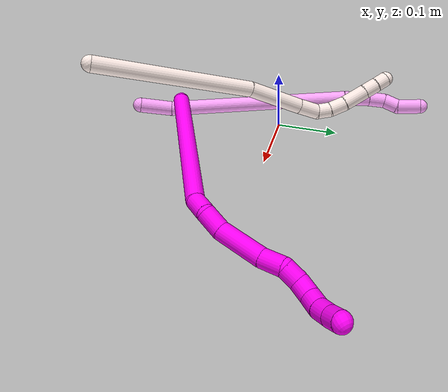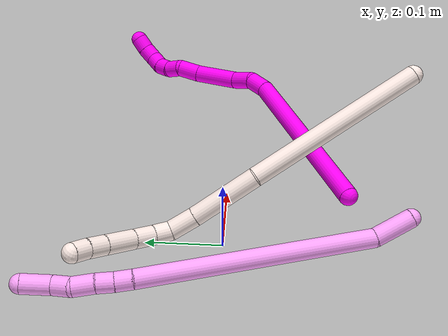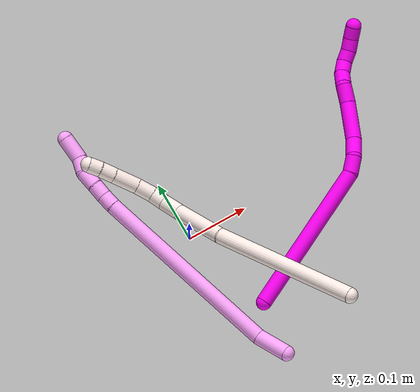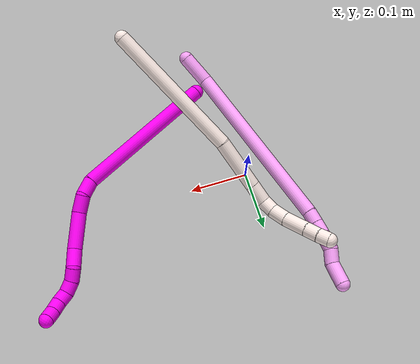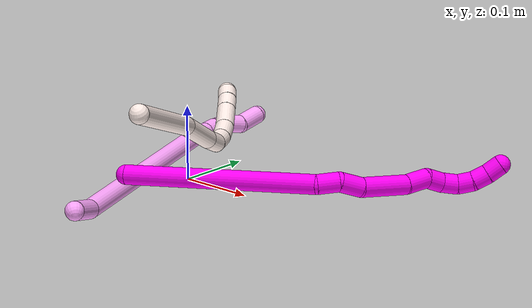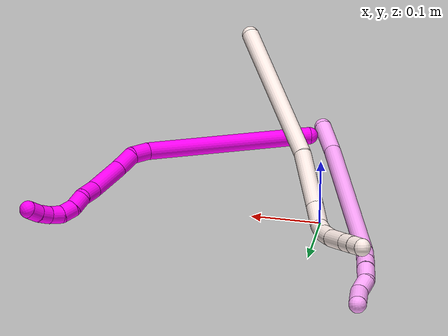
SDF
<sdf version="1.7">
 <world name="default">
  <model name="4">
   <static>0</static>
   <link name="4">
    <collision name="collision-cylinder-e_1_1_4">
     <pose>0.004407 0.020574 -0.016943 -2.25972 0.163883 -0.344597</pose>
     <geometry><cylinder><radius>0.0125</radius><length>0.054029</length></cylinder></geometry>
     <surface>
      <friction><ode><mu>1.16</mu><mu2>1.16</mu2><slip1>0</slip1><slip2>0</slip2></ode></friction>
      <contact><ode><kp>1e+06</kp><kd>1</kd><max_vel>0</max_vel><min_depth>0.001</min_depth></ode></contact>
     </surface>
    </collision>
    <visual name="visual-cylinder-e_1_1_4">
     <pose>0.004407 0.020574 -0.016943 -2.25972 0.163883 -0.344597</pose>
     <geometry><cylinder><radius>0.0125</radius><length>0.054029</length></cylinder></geometry>
     <material><ambient>1 0.65098 0.996078 1</ambient></material>
    </visual>
    <collision name="collision-cylinder-e_2_4_5">
     <pose>-0.013799 0.142846 -0.147864 -2.41306 -0.146975 0.38148</pose>
     <geometry><cylinder><radius>0.0125</radius><length>0.308836</length></cylinder></geometry>
     <surface>
      <friction><ode><mu>1.16</mu><mu2>1.16</mu2><slip1>0</slip1><slip2>0</slip2></ode></friction>
      <contact><ode><kp>1e+06</kp><kd>1</kd><max_vel>0</max_vel><min_depth>0.001</min_depth></ode></contact>
     </surface>
    </collision>
    <visual name="visual-cylinder-e_2_4_5">
     <pose>-0.013799 0.142846 -0.147864 -2.41306 -0.146975 0.38148</pose>
     <geometry><cylinder><radius>0.0125</radius><length>0.308836</length></cylinder></geometry>
     <material><ambient>1 0.65098 0.996078 1</ambient></material>
    </visual>
    <collision name="collision-cylinder-e_3_5_6">
     <pose>-0.038346 0.252634 -0.269013 -2.29621 -0.176949 0.389425</pose>
     <geometry><cylinder><radius>0.0125</radius><length>0.021965</length></cylinder></geometry>
     <surface>
      <friction><ode><mu>1.16</mu><mu2>1.16</mu2><slip1>0</slip1><slip2>0</slip2></ode></friction>
      <contact><ode><kp>1e+06</kp><kd>1</kd><max_vel>0</max_vel><min_depth>0.001</min_depth></ode></contact>
     </surface>
    </collision>
    <visual name="visual-cylinder-e_3_5_6">
     <pose>-0.038346 0.252634 -0.269013 -2.29621 -0.176949 0.389425</pose>
     <geometry><cylinder><radius>0.0125</radius><length>0.021965</length></cylinder></geometry>
     <material><ambient>1 0.65098 0.996078 1</ambient></material>
    </visual>
    <collision name="collision-cylinder-e_4_6_7">
     <pose>-0.043007 0.268638 -0.283631 -2.32562 -0.245938 0.557009</pose>
     <geometry><cylinder><radius>0.0125</radius><length>0.022406</length></cylinder></geometry>
     <surface>
      <friction><ode><mu>1.16</mu><mu2>1.16</mu2><slip1>0</slip1><slip2>0</slip2></ode></friction>
      <contact><ode><kp>1e+06</kp><kd>1</kd><max_vel>0</max_vel><min_depth>0.001</min_depth></ode></contact>
     </surface>
    </collision>
    <visual name="visual-cylinder-e_4_6_7">
     <pose>-0.043007 0.268638 -0.283631 -2.32562 -0.245938 0.557009</pose>
     <geometry><cylinder><radius>0.0125</radius><length>0.022406</length></cylinder></geometry>
     <material><ambient>1 0.65098 0.996078 1</ambient></material>
    </visual>
    <collision name="collision-cylinder-e_5_7_8">
     <pose>-0.04819 0.287509 -0.299611 -2.23262 -0.174979 0.355254</pose>
     <geometry><cylinder><radius>0.0125</radius><length>0.028209</length></cylinder></geometry>
     <surface>
      <friction><ode><mu>1.16</mu><mu2>1.16</mu2><slip1>0</slip1><slip2>0</slip2></ode></friction>
      <contact><ode><kp>1e+06</kp><kd>1</kd><max_vel>0</max_vel><min_depth>0.001</min_depth></ode></contact>
     </surface>
    </collision>
    <visual name="visual-cylinder-e_5_7_8">
     <pose>-0.04819 0.287509 -0.299611 -2.23262 -0.174979 0.355254</pose>
     <geometry><cylinder><radius>0.0125</radius><length>0.028209</length></cylinder></geometry>
     <material><ambient>1 0.65098 0.996078 1</ambient></material>
    </visual>
    <collision name="collision-cylinder-e_6_8_9">
     <pose>-0.055427 0.309787 -0.311578 -1.86506 -0.384118 0.512708</pose>
     <geometry><cylinder><radius>0.0125</radius><length>0.025519</length></cylinder></geometry>
     <surface>
      <friction><ode><mu>1.16</mu><mu2>1.16</mu2><slip1>0</slip1><slip2>0</slip2></ode></friction>
      <contact><ode><kp>1e+06</kp><kd>1</kd><max_vel>0</max_vel><min_depth>0.001</min_depth></ode></contact>
     </surface>
    </collision>
    <visual name="visual-cylinder-e_6_8_9">
     <pose>-0.055427 0.309787 -0.311578 -1.86506 -0.384118 0.512708</pose>
     <geometry><cylinder><radius>0.0125</radius><length>0.025519</length></cylinder></geometry>
     <material><ambient>1 0.65098 0.996078 1</ambient></material>
    </visual>
    <collision name="collision-cylinder-e_7_9_2">
     <pose>-0.067124 0.334154 -0.327775 -2.34537 -0.362142 0.821136</pose>
     <geometry><cylinder><radius>0.0125</radius><length>0.039037</length></cylinder></geometry>
     <surface>
      <friction><ode><mu>1.16</mu><mu2>1.16</mu2><slip1>0</slip1><slip2>0</slip2></ode></friction>
      <contact><ode><kp>1e+06</kp><kd>1</kd><max_vel>0</max_vel><min_depth>0.001</min_depth></ode></contact>
     </surface>
    </collision>
    <visual name="visual-cylinder-e_7_9_2">
     <pose>-0.067124 0.334154 -0.327775 -2.34537 -0.362142 0.821136</pose>
     <geometry><cylinder><radius>0.0125</radius><length>0.039037</length></cylinder></geometry>
     <material><ambient>1 0.65098 0.996078 1</ambient></material>
    </visual>
    <collision name="collision-sphere-2">
     <pose>-0.074038 0.347199 -0.340541 0 -0 0</pose>
     <geometry><sphere><radius>0.0125</radius></sphere></geometry>
     <surface>
      <friction><ode><mu>1.16</mu><mu2>1.16</mu2><slip1>0</slip1><slip2>0</slip2></ode></friction>
      <contact><ode><kp>1e+06</kp><kd>1</kd><max_vel>0</max_vel><min_depth>0.001</min_depth></ode></contact>
     </surface>
    </collision>
    <visual name="visual-sphere-2">
     <pose>-0.074038 0.347199 -0.340541 0 -0 0</pose>
     <geometry><sphere><radius>0.0125</radius></sphere></geometry>
     <material><ambient>1 0.65098 0.996078 1</ambient></material>
    </visual>
    <collision name="collision-sphere-9">
     <pose>-0.060209 0.321109 -0.315009 0 -0 0</pose>
     <geometry><sphere><radius>0.0125</radius></sphere></geometry>
     <surface>
      <friction><ode><mu>1.16</mu><mu2>1.16</mu2><slip1>0</slip1><slip2>0</slip2></ode></friction>
      <contact><ode><kp>1e+06</kp><kd>1</kd><max_vel>0</max_vel><min_depth>0.001</min_depth></ode></contact>
     </surface>
    </collision>
    <visual name="visual-sphere-9">
     <pose>-0.060209 0.321109 -0.315009 0 -0 0</pose>
     <geometry><sphere><radius>0.0125</radius></sphere></geometry>
     <material><ambient>1 0.65098 0.996078 1</ambient></material>
    </visual>
    <collision name="collision-sphere-4">
     <pose>0.008815 0.041148 -0.033886 0 -0 0</pose>
     <geometry><sphere><radius>0.0125</radius></sphere></geometry>
     <surface>
      <friction><ode><mu>1.16</mu><mu2>1.16</mu2><slip1>0</slip1><slip2>0</slip2></ode></friction>
      <contact><ode><kp>1e+06</kp><kd>1</kd><max_vel>0</max_vel><min_depth>0.001</min_depth></ode></contact>
     </surface>
    </collision>
    <visual name="visual-sphere-4">
     <pose>0.008815 0.041148 -0.033886 0 -0 0</pose>
     <geometry><sphere><radius>0.0125</radius></sphere></geometry>
     <material><ambient>1 0.65098 0.996078 1</ambient></material>
    </visual>
    <collision name="collision-sphere-1">
     <geometry><sphere><radius>0.0125</radius></sphere></geometry>
     <surface>
      <friction><ode><mu>1.16</mu><mu2>1.16</mu2><slip1>0</slip1><slip2>0</slip2></ode></friction>
      <contact><ode><kp>1e+06</kp><kd>1</kd><max_vel>0</max_vel><min_depth>0.001</min_depth></ode></contact>
     </surface>
    </collision>
    <visual name="visual-sphere-1">
     <geometry><sphere><radius>0.0125</radius></sphere></geometry>
     <material><ambient>1 0.65098 0.996078 1</ambient></material>
    </visual>
    <collision name="collision-sphere-8">
     <pose>-0.050645 0.298466 -0.308147 0 -0 0</pose>
     <geometry><sphere><radius>0.0125</radius></sphere></geometry>
     <surface>
      <friction><ode><mu>1.16</mu><mu2>1.16</mu2><slip1>0</slip1><slip2>0</slip2></ode></friction>
      <contact><ode><kp>1e+06</kp><kd>1</kd><max_vel>0</max_vel><min_depth>0.001</min_depth></ode></contact>
     </surface>
    </collision>
    <visual name="visual-sphere-8">
     <pose>-0.050645 0.298466 -0.308147 0 -0 0</pose>
     <geometry><sphere><radius>0.0125</radius></sphere></geometry>
     <material><ambient>1 0.65098 0.996078 1</ambient></material>
    </visual>
    <collision name="collision-sphere-5">
     <pose>-0.036413 0.244545 -0.261841 0 -0 0</pose>
     <geometry><sphere><radius>0.0125</radius></sphere></geometry>
     <surface>
      <friction><ode><mu>1.16</mu><mu2>1.16</mu2><slip1>0</slip1><slip2>0</slip2></ode></friction>
      <contact><ode><kp>1e+06</kp><kd>1</kd><max_vel>0</max_vel><min_depth>0.001</min_depth></ode></contact>
     </surface>
    </collision>
    <visual name="visual-sphere-5">
     <pose>-0.036413 0.244545 -0.261841 0 -0 0</pose>
     <geometry><sphere><radius>0.0125</radius></sphere></geometry>
     <material><ambient>1 0.65098 0.996078 1</ambient></material>
    </visual>
    <collision name="collision-sphere-6">
     <pose>-0.04028 0.260724 -0.276186 0 -0 0</pose>
     <geometry><sphere><radius>0.0125</radius></sphere></geometry>
     <surface>
      <friction><ode><mu>1.16</mu><mu2>1.16</mu2><slip1>0</slip1><slip2>0</slip2></ode></friction>
      <contact><ode><kp>1e+06</kp><kd>1</kd><max_vel>0</max_vel><min_depth>0.001</min_depth></ode></contact>
     </surface>
    </collision>
    <visual name="visual-sphere-6">
     <pose>-0.04028 0.260724 -0.276186 0 -0 0</pose>
     <geometry><sphere><radius>0.0125</radius></sphere></geometry>
     <material><ambient>1 0.65098 0.996078 1</ambient></material>
    </visual>
    <collision name="collision-sphere-7">
     <pose>-0.045735 0.276553 -0.291076 0 -0 0</pose>
     <geometry><sphere><radius>0.0125</radius></sphere></geometry>
     <surface>
      <friction><ode><mu>1.16</mu><mu2>1.16</mu2><slip1>0</slip1><slip2>0</slip2></ode></friction>
      <contact><ode><kp>1e+06</kp><kd>1</kd><max_vel>0</max_vel><min_depth>0.001</min_depth></ode></contact>
     </surface>
    </collision>
    <visual name="visual-sphere-7">
     <pose>-0.045735 0.276553 -0.291076 0 -0 0</pose>
     <geometry><sphere><radius>0.0125</radius></sphere></geometry>
     <material><ambient>1 0.65098 0.996078 1</ambient></material>
    </visual>
    <inertial>
     <pose>-0.022447 0.171712 -0.176086 0 -0 0</pose>
     <mass>0.5</mass>
     <inertia>
      <ixx>0.003197</ixx>
      <ixy>0</ixy>
      <ixz>0</ixz>
      <iyy>-0.000694</iyy>
      <iyz>0</iyz>
      <izz>-0.001311</izz>
     </inertia>
    </inertial>
   </link>
   <pose>0.036449 -0.23856 0.027508 -2.21011 0.684445 -2.66268</pose>
  </model>
  <model name="10">
   <static>0</static>
   <link name="10">
    <collision name="collision-cylinder-e_1_1_4">
     <pose>0.003686 0.040278 0.115553 -0.3354 0.030109 -0.005098</pose>
     <geometry><cylinder><radius>0.0125</radius><length>0.244854</length></cylinder></geometry>
     <surface>
      <friction><ode><mu>1.16</mu><mu2>1.16</mu2><slip1>0</slip1><slip2>0</slip2></ode></friction>
      <contact><ode><kp>1e+06</kp><kd>1</kd><max_vel>0</max_vel><min_depth>0.001</min_depth></ode></contact>
     </surface>
    </collision>
    <visual name="visual-cylinder-e_1_1_4">
     <pose>0.003686 0.040278 0.115553 -0.3354 0.030109 -0.005098</pose>
     <geometry><cylinder><radius>0.0125</radius><length>0.244854</length></cylinder></geometry>
     <material><ambient>1 0 0.964706 1</ambient></material>
    </visual>
    <collision name="collision-cylinder-e_2_4_5">
     <pose>0.011437 0.08123 0.244457 -0.050417 0.295252 -0.007499</pose>
     <geometry><cylinder><radius>0.0125</radius><length>0.027945</length></cylinder></geometry>
     <surface>
      <friction><ode><mu>1.16</mu><mu2>1.16</mu2><slip1>0</slip1><slip2>0</slip2></ode></friction>
      <contact><ode><kp>1e+06</kp><kd>1</kd><max_vel>0</max_vel><min_depth>0.001</min_depth></ode></contact>
     </surface>
    </collision>
    <visual name="visual-cylinder-e_2_4_5">
     <pose>0.011437 0.08123 0.244457 -0.050417 0.295252 -0.007499</pose>
     <geometry><cylinder><radius>0.0125</radius><length>0.027945</length></cylinder></geometry>
     <material><ambient>1 0 0.964706 1</ambient></material>
    </visual>
    <collision name="collision-cylinder-e_3_5_6">
     <pose>0.016103 0.076939 0.272021 0.336057 0.039839 0.006759</pose>
     <geometry><cylinder><radius>0.0125</radius><length>0.030135</length></cylinder></geometry>
     <surface>
      <friction><ode><mu>1.16</mu><mu2>1.16</mu2><slip1>0</slip1><slip2>0</slip2></ode></friction>
      <contact><ode><kp>1e+06</kp><kd>1</kd><max_vel>0</max_vel><min_depth>0.001</min_depth></ode></contact>
     </surface>
    </collision>
    <visual name="visual-cylinder-e_3_5_6">
     <pose>0.016103 0.076939 0.272021 0.336057 0.039839 0.006759</pose>
     <geometry><cylinder><radius>0.0125</radius><length>0.030135</length></cylinder></geometry>
     <material><ambient>1 0 0.964706 1</ambient></material>
    </visual>
    <collision name="collision-cylinder-e_4_6_7">
     <pose>0.026892 0.061834 0.314176 0.348129 0.330222 0.058584</pose>
     <geometry><cylinder><radius>0.0125</radius><length>0.062845</length></cylinder></geometry>
     <surface>
      <friction><ode><mu>1.16</mu><mu2>1.16</mu2><slip1>0</slip1><slip2>0</slip2></ode></friction>
      <contact><ode><kp>1e+06</kp><kd>1</kd><max_vel>0</max_vel><min_depth>0.001</min_depth></ode></contact>
     </surface>
    </collision>
    <visual name="visual-cylinder-e_4_6_7">
     <pose>0.026892 0.061834 0.314176 0.348129 0.330222 0.058584</pose>
     <geometry><cylinder><radius>0.0125</radius><length>0.062845</length></cylinder></geometry>
     <material><ambient>1 0 0.964706 1</ambient></material>
    </visual>
    <collision name="collision-cylinder-e_5_7_8">
     <pose>0.045017 0.047495 0.354587 0.324816 0.542785 0.091123</pose>
     <geometry><cylinder><radius>0.0125</radius><length>0.030731</length></cylinder></geometry>
     <surface>
      <friction><ode><mu>1.16</mu><mu2>1.16</mu2><slip1>0</slip1><slip2>0</slip2></ode></friction>
      <contact><ode><kp>1e+06</kp><kd>1</kd><max_vel>0</max_vel><min_depth>0.001</min_depth></ode></contact>
     </surface>
    </collision>
    <visual name="visual-cylinder-e_5_7_8">
     <pose>0.045017 0.047495 0.354587 0.324816 0.542785 0.091123</pose>
     <geometry><cylinder><radius>0.0125</radius><length>0.030731</length></cylinder></geometry>
     <material><ambient>1 0 0.964706 1</ambient></material>
    </visual>
    <collision name="collision-cylinder-e_6_8_9">
     <pose>0.053444 0.03855 0.377076 0.442339 0.044188 0.009937</pose>
     <geometry><cylinder><radius>0.0125</radius><length>0.022195</length></cylinder></geometry>
     <surface>
      <friction><ode><mu>1.16</mu><mu2>1.16</mu2><slip1>0</slip1><slip2>0</slip2></ode></friction>
      <contact><ode><kp>1e+06</kp><kd>1</kd><max_vel>0</max_vel><min_depth>0.001</min_depth></ode></contact>
     </surface>
    </collision>
    <visual name="visual-cylinder-e_6_8_9">
     <pose>0.053444 0.03855 0.377076 0.442339 0.044188 0.009937</pose>
     <geometry><cylinder><radius>0.0125</radius><length>0.022195</length></cylinder></geometry>
     <material><ambient>1 0 0.964706 1</ambient></material>
    </visual>
    <collision name="collision-cylinder-e_7_9_10">
     <pose>0.054975 0.03271 0.397589 0.103959 0.098358 0.005121</pose>
     <geometry><cylinder><radius>0.0125</radius><length>0.021205</length></cylinder></geometry>
     <surface>
      <friction><ode><mu>1.16</mu><mu2>1.16</mu2><slip1>0</slip1><slip2>0</slip2></ode></friction>
      <contact><ode><kp>1e+06</kp><kd>1</kd><max_vel>0</max_vel><min_depth>0.001</min_depth></ode></contact>
     </surface>
    </collision>
    <visual name="visual-cylinder-e_7_9_10">
     <pose>0.054975 0.03271 0.397589 0.103959 0.098358 0.005121</pose>
     <geometry><cylinder><radius>0.0125</radius><length>0.021205</length></cylinder></geometry>
     <material><ambient>1 0 0.964706 1</ambient></material>
    </visual>
    <collision name="collision-cylinder-e_8_10_11">
     <pose>0.059107 0.034144 0.417289 -0.268157 0.313097 -0.042575</pose>
     <geometry><cylinder><radius>0.0125</radius><length>0.020069</length></cylinder></geometry>
     <surface>
      <friction><ode><mu>1.16</mu><mu2>1.16</mu2><slip1>0</slip1><slip2>0</slip2></ode></friction>
      <contact><ode><kp>1e+06</kp><kd>1</kd><max_vel>0</max_vel><min_depth>0.001</min_depth></ode></contact>
     </surface>
    </collision>
    <visual name="visual-cylinder-e_8_10_11">
     <pose>0.059107 0.034144 0.417289 -0.268157 0.313097 -0.042575</pose>
     <geometry><cylinder><radius>0.0125</radius><length>0.020069</length></cylinder></geometry>
     <material><ambient>1 0 0.964706 1</ambient></material>
    </visual>
    <collision name="collision-cylinder-e_9_11_12">
     <pose>0.067786 0.039153 0.434415 -0.303358 0.592616 -0.093263</pose>
     <geometry><cylinder><radius>0.0125</radius><length>0.020011</length></cylinder></geometry>
     <surface>
      <friction><ode><mu>1.16</mu><mu2>1.16</mu2><slip1>0</slip1><slip2>0</slip2></ode></friction>
      <contact><ode><kp>1e+06</kp><kd>1</kd><max_vel>0</max_vel><min_depth>0.001</min_depth></ode></contact>
     </surface>
    </collision>
    <visual name="visual-cylinder-e_9_11_12">
     <pose>0.067786 0.039153 0.434415 -0.303358 0.592616 -0.093263</pose>
     <geometry><cylinder><radius>0.0125</radius><length>0.020011</length></cylinder></geometry>
     <material><ambient>1 0 0.964706 1</ambient></material>
    </visual>
    <collision name="collision-cylinder-e_10_12_2">
     <pose>0.079791 0.045155 0.449155 -0.476806 0.696248 -0.175934</pose>
     <geometry><cylinder><radius>0.0125</radius><length>0.02001</length></cylinder></geometry>
     <surface>
      <friction><ode><mu>1.16</mu><mu2>1.16</mu2><slip1>0</slip1><slip2>0</slip2></ode></friction>
      <contact><ode><kp>1e+06</kp><kd>1</kd><max_vel>0</max_vel><min_depth>0.001</min_depth></ode></contact>
     </surface>
    </collision>
    <visual name="visual-cylinder-e_10_12_2">
     <pose>0.079791 0.045155 0.449155 -0.476806 0.696248 -0.175934</pose>
     <geometry><cylinder><radius>0.0125</radius><length>0.02001</length></cylinder></geometry>
     <material><ambient>1 0 0.964706 1</ambient></material>
    </visual>
    <collision name="collision-sphere-2">
     <pose>0.086208 0.048678 0.455976 0 -0 0</pose>
     <geometry><sphere><radius>0.0125</radius></sphere></geometry>
     <surface>
      <friction><ode><mu>1.16</mu><mu2>1.16</mu2><slip1>0</slip1><slip2>0</slip2></ode></friction>
      <contact><ode><kp>1e+06</kp><kd>1</kd><max_vel>0</max_vel><min_depth>0.001</min_depth></ode></contact>
     </surface>
    </collision>
    <visual name="visual-sphere-2">
     <pose>0.086208 0.048678 0.455976 0 -0 0</pose>
     <geometry><sphere><radius>0.0125</radius></sphere></geometry>
     <material><ambient>1 0 0.964706 1</ambient></material>
    </visual>
    <collision name="collision-sphere-12">
     <pose>0.073375 0.041632 0.442335 0 -0 0</pose>
     <geometry><sphere><radius>0.0125</radius></sphere></geometry>
     <surface>
      <friction><ode><mu>1.16</mu><mu2>1.16</mu2><slip1>0</slip1><slip2>0</slip2></ode></friction>
      <contact><ode><kp>1e+06</kp><kd>1</kd><max_vel>0</max_vel><min_depth>0.001</min_depth></ode></contact>
     </surface>
    </collision>
    <visual name="visual-sphere-12">
     <pose>0.073375 0.041632 0.442335 0 -0 0</pose>
     <geometry><sphere><radius>0.0125</radius></sphere></geometry>
     <material><ambient>1 0 0.964706 1</ambient></material>
    </visual>
    <collision name="collision-sphere-11">
     <pose>0.062198 0.036674 0.426494 0 -0 0</pose>
     <geometry><sphere><radius>0.0125</radius></sphere></geometry>
     <surface>
      <friction><ode><mu>1.16</mu><mu2>1.16</mu2><slip1>0</slip1><slip2>0</slip2></ode></friction>
      <contact><ode><kp>1e+06</kp><kd>1</kd><max_vel>0</max_vel><min_depth>0.001</min_depth></ode></contact>
     </surface>
    </collision>
    <visual name="visual-sphere-11">
     <pose>0.062198 0.036674 0.426494 0 -0 0</pose>
     <geometry><sphere><radius>0.0125</radius></sphere></geometry>
     <material><ambient>1 0 0.964706 1</ambient></material>
    </visual>
    <collision name="collision-sphere-10">
     <pose>0.056017 0.031615 0.408083 0 -0 0</pose>
     <geometry><sphere><radius>0.0125</radius></sphere></geometry>
     <surface>
      <friction><ode><mu>1.16</mu><mu2>1.16</mu2><slip1>0</slip1><slip2>0</slip2></ode></friction>
      <contact><ode><kp>1e+06</kp><kd>1</kd><max_vel>0</max_vel><min_depth>0.001</min_depth></ode></contact>
     </surface>
    </collision>
    <visual name="visual-sphere-10">
     <pose>0.056017 0.031615 0.408083 0 -0 0</pose>
     <geometry><sphere><radius>0.0125</radius></sphere></geometry>
     <material><ambient>1 0 0.964706 1</ambient></material>
    </visual>
    <collision name="collision-sphere-9">
     <pose>0.053934 0.033805 0.387095 0 -0 0</pose>
     <geometry><sphere><radius>0.0125</radius></sphere></geometry>
     <surface>
      <friction><ode><mu>1.16</mu><mu2>1.16</mu2><slip1>0</slip1><slip2>0</slip2></ode></friction>
      <contact><ode><kp>1e+06</kp><kd>1</kd><max_vel>0</max_vel><min_depth>0.001</min_depth></ode></contact>
     </surface>
    </collision>
    <visual name="visual-sphere-9">
     <pose>0.053934 0.033805 0.387095 0 -0 0</pose>
     <geometry><sphere><radius>0.0125</radius></sphere></geometry>
     <material><ambient>1 0 0.964706 1</ambient></material>
    </visual>
    <collision name="collision-sphere-4">
     <pose>0.007371 0.080557 0.231106 0 -0 0</pose>
     <geometry><sphere><radius>0.0125</radius></sphere></geometry>
     <surface>
      <friction><ode><mu>1.16</mu><mu2>1.16</mu2><slip1>0</slip1><slip2>0</slip2></ode></friction>
      <contact><ode><kp>1e+06</kp><kd>1</kd><max_vel>0</max_vel><min_depth>0.001</min_depth></ode></contact>
     </surface>
    </collision>
    <visual name="visual-sphere-4">
     <pose>0.007371 0.080557 0.231106 0 -0 0</pose>
     <geometry><sphere><radius>0.0125</radius></sphere></geometry>
     <material><ambient>1 0 0.964706 1</ambient></material>
    </visual>
    <collision name="collision-sphere-1">
     <geometry><sphere><radius>0.0125</radius></sphere></geometry>
     <surface>
      <friction><ode><mu>1.16</mu><mu2>1.16</mu2><slip1>0</slip1><slip2>0</slip2></ode></friction>
      <contact><ode><kp>1e+06</kp><kd>1</kd><max_vel>0</max_vel><min_depth>0.001</min_depth></ode></contact>
     </surface>
    </collision>
    <visual name="visual-sphere-1">
     <geometry><sphere><radius>0.0125</radius></sphere></geometry>
     <material><ambient>1 0 0.964706 1</ambient></material>
    </visual>
    <collision name="collision-sphere-8">
     <pose>0.052954 0.043296 0.367056 0 -0 0</pose>
     <geometry><sphere><radius>0.0125</radius></sphere></geometry>
     <surface>
      <friction><ode><mu>1.16</mu><mu2>1.16</mu2><slip1>0</slip1><slip2>0</slip2></ode></friction>
      <contact><ode><kp>1e+06</kp><kd>1</kd><max_vel>0</max_vel><min_depth>0.001</min_depth></ode></contact>
     </surface>
    </collision>
    <visual name="visual-sphere-8">
     <pose>0.052954 0.043296 0.367056 0 -0 0</pose>
     <geometry><sphere><radius>0.0125</radius></sphere></geometry>
     <material><ambient>1 0 0.964706 1</ambient></material>
    </visual>
    <collision name="collision-sphere-5">
     <pose>0.015503 0.081904 0.257808 0 -0 0</pose>
     <geometry><sphere><radius>0.0125</radius></sphere></geometry>
     <surface>
      <friction><ode><mu>1.16</mu><mu2>1.16</mu2><slip1>0</slip1><slip2>0</slip2></ode></friction>
      <contact><ode><kp>1e+06</kp><kd>1</kd><max_vel>0</max_vel><min_depth>0.001</min_depth></ode></contact>
     </surface>
    </collision>
    <visual name="visual-sphere-5">
     <pose>0.015503 0.081904 0.257808 0 -0 0</pose>
     <geometry><sphere><radius>0.0125</radius></sphere></geometry>
     <material><ambient>1 0 0.964706 1</ambient></material>
    </visual>
    <collision name="collision-sphere-6">
     <pose>0.016703 0.071974 0.286235 0 -0 0</pose>
     <geometry><sphere><radius>0.0125</radius></sphere></geometry>
     <surface>
      <friction><ode><mu>1.16</mu><mu2>1.16</mu2><slip1>0</slip1><slip2>0</slip2></ode></friction>
      <contact><ode><kp>1e+06</kp><kd>1</kd><max_vel>0</max_vel><min_depth>0.001</min_depth></ode></contact>
     </surface>
    </collision>
    <visual name="visual-sphere-6">
     <pose>0.016703 0.071974 0.286235 0 -0 0</pose>
     <geometry><sphere><radius>0.0125</radius></sphere></geometry>
     <material><ambient>1 0 0.964706 1</ambient></material>
    </visual>
    <collision name="collision-sphere-7">
     <pose>0.037081 0.051694 0.342118 0 -0 0</pose>
     <geometry><sphere><radius>0.0125</radius></sphere></geometry>
     <surface>
      <friction><ode><mu>1.16</mu><mu2>1.16</mu2><slip1>0</slip1><slip2>0</slip2></ode></friction>
      <contact><ode><kp>1e+06</kp><kd>1</kd><max_vel>0</max_vel><min_depth>0.001</min_depth></ode></contact>
     </surface>
    </collision>
    <visual name="visual-sphere-7">
     <pose>0.037081 0.051694 0.342118 0 -0 0</pose>
     <geometry><sphere><radius>0.0125</radius></sphere></geometry>
     <material><ambient>1 0 0.964706 1</ambient></material>
    </visual>
    <inertial>
     <pose>0.022544 0.047436 0.233637 0 -0 0</pose>
     <mass>0.5</mass>
     <inertia>
      <ixx>0.001272</ixx>
      <ixy>0</ixy>
      <ixz>0</ixz>
      <iyy>0.001202</iyy>
      <iyz>0</iyz>
      <izz>-0.000411</izz>
     </inertia>
    </inertial>
   </link>
   <pose>0.043202 -0.156316 0.055327 1.88548 -0.923108 2.03093</pose>
  </model>
  <model name="11">
   <static>0</static>
   <link name="11">
    <collision name="collision-cylinder-e_1_1_4">
     <pose>-0.046713 0.070354 -0.085885 -2.45528 -0.39827 1.02831</pose>
     <geometry><cylinder><radius>0.0125</radius><length>0.240898</length></cylinder></geometry>
     <surface>
      <friction><ode><mu>1.16</mu><mu2>1.16</mu2><slip1>0</slip1><slip2>0</slip2></ode></friction>
      <contact><ode><kp>1e+06</kp><kd>1</kd><max_vel>0</max_vel><min_depth>0.001</min_depth></ode></contact>
     </surface>
    </collision>
    <visual name="visual-cylinder-e_1_1_4">
     <pose>-0.046713 0.070354 -0.085885 -2.45528 -0.39827 1.02831</pose>
     <geometry><cylinder><radius>0.0125</radius><length>0.240898</length></cylinder></geometry>
     <material><ambient>1 0.933333 0.909804 1</ambient></material>
    </visual>
    <collision name="collision-cylinder-e_2_4_5">
     <pose>-0.104683 0.164525 -0.207867 -2.55835 -0.254644 0.806215</pose>
     <geometry><cylinder><radius>0.0125</radius><length>0.089374</length></cylinder></geometry>
     <surface>
      <friction><ode><mu>1.16</mu><mu2>1.16</mu2><slip1>0</slip1><slip2>0</slip2></ode></friction>
      <contact><ode><kp>1e+06</kp><kd>1</kd><max_vel>0</max_vel><min_depth>0.001</min_depth></ode></contact>
     </surface>
    </collision>
    <visual name="visual-cylinder-e_2_4_5">
     <pose>-0.104683 0.164525 -0.207867 -2.55835 -0.254644 0.806215</pose>
     <geometry><cylinder><radius>0.0125</radius><length>0.089374</length></cylinder></geometry>
     <material><ambient>1 0.933333 0.909804 1</ambient></material>
    </visual>
    <collision name="collision-cylinder-e_3_5_6">
     <pose>-0.120222 0.198491 -0.257592 -2.5015 -0.246891 0.716411</pose>
     <geometry><cylinder><radius>0.0125</radius><length>0.035048</length></cylinder></geometry>
     <surface>
      <friction><ode><mu>1.16</mu><mu2>1.16</mu2><slip1>0</slip1><slip2>0</slip2></ode></friction>
      <contact><ode><kp>1e+06</kp><kd>1</kd><max_vel>0</max_vel><min_depth>0.001</min_depth></ode></contact>
     </surface>
    </collision>
    <visual name="visual-cylinder-e_3_5_6">
     <pose>-0.120222 0.198491 -0.257592 -2.5015 -0.246891 0.716411</pose>
     <geometry><cylinder><radius>0.0125</radius><length>0.035048</length></cylinder></geometry>
     <material><ambient>1 0.933333 0.909804 1</ambient></material>
    </visual>
    <collision name="collision-cylinder-e_4_6_7">
     <pose>-0.128707 0.218014 -0.275719 -2.01822 -0.384119 0.599394</pose>
     <geometry><cylinder><radius>0.0125</radius><length>0.022429</length></cylinder></geometry>
     <surface>
      <friction><ode><mu>1.16</mu><mu2>1.16</mu2><slip1>0</slip1><slip2>0</slip2></ode></friction>
      <contact><ode><kp>1e+06</kp><kd>1</kd><max_vel>0</max_vel><min_depth>0.001</min_depth></ode></contact>
     </surface>
    </collision>
    <visual name="visual-cylinder-e_4_6_7">
     <pose>-0.128707 0.218014 -0.275719 -2.01822 -0.384119 0.599394</pose>
     <geometry><cylinder><radius>0.0125</radius><length>0.022429</length></cylinder></geometry>
     <material><ambient>1 0.933333 0.909804 1</ambient></material>
    </visual>
    <collision name="collision-cylinder-e_5_7_8">
     <pose>-0.139929 0.238894 -0.283087 -1.81515 -0.534403 0.674034</pose>
     <geometry><cylinder><radius>0.0125</radius><length>0.027561</length></cylinder></geometry>
     <surface>
      <friction><ode><mu>1.16</mu><mu2>1.16</mu2><slip1>0</slip1><slip2>0</slip2></ode></friction>
      <contact><ode><kp>1e+06</kp><kd>1</kd><max_vel>0</max_vel><min_depth>0.001</min_depth></ode></contact>
     </surface>
    </collision>
    <visual name="visual-cylinder-e_5_7_8">
     <pose>-0.139929 0.238894 -0.283087 -1.81515 -0.534403 0.674034</pose>
     <geometry><cylinder><radius>0.0125</radius><length>0.027561</length></cylinder></geometry>
     <material><ambient>1 0.933333 0.909804 1</ambient></material>
    </visual>
    <collision name="collision-cylinder-e_6_8_9">
     <pose>-0.158729 0.266707 -0.287967 -1.6935 -0.622111 0.697435</pose>
     <geometry><cylinder><radius>0.0125</radius><length>0.040434</length></cylinder></geometry>
     <surface>
      <friction><ode><mu>1.16</mu><mu2>1.16</mu2><slip1>0</slip1><slip2>0</slip2></ode></friction>
      <contact><ode><kp>1e+06</kp><kd>1</kd><max_vel>0</max_vel><min_depth>0.001</min_depth></ode></contact>
     </surface>
    </collision>
    <visual name="visual-cylinder-e_6_8_9">
     <pose>-0.158729 0.266707 -0.287967 -1.6935 -0.622111 0.697435</pose>
     <geometry><cylinder><radius>0.0125</radius><length>0.040434</length></cylinder></geometry>
     <material><ambient>1 0.933333 0.909804 1</ambient></material>
    </visual>
    <collision name="collision-cylinder-e_7_9_10">
     <pose>-0.177459 0.292639 -0.291137 -1.69064 -0.621797 0.695237</pose>
     <geometry><cylinder><radius>0.0125</radius><length>0.023857</length></cylinder></geometry>
     <surface>
      <friction><ode><mu>1.16</mu><mu2>1.16</mu2><slip1>0</slip1><slip2>0</slip2></ode></friction>
      <contact><ode><kp>1e+06</kp><kd>1</kd><max_vel>0</max_vel><min_depth>0.001</min_depth></ode></contact>
     </surface>
    </collision>
    <visual name="visual-cylinder-e_7_9_10">
     <pose>-0.177459 0.292639 -0.291137 -1.69064 -0.621797 0.695237</pose>
     <geometry><cylinder><radius>0.0125</radius><length>0.023857</length></cylinder></geometry>
     <material><ambient>1 0.933333 0.909804 1</ambient></material>
    </visual>
    <collision name="collision-cylinder-e_8_10_2">
     <pose>-0.190894 0.310038 -0.29353 -1.72826 -0.68932 0.796077</pose>
     <geometry><cylinder><radius>0.0125</radius><length>0.020399</length></cylinder></geometry>
     <surface>
      <friction><ode><mu>1.16</mu><mu2>1.16</mu2><slip1>0</slip1><slip2>0</slip2></ode></friction>
      <contact><ode><kp>1e+06</kp><kd>1</kd><max_vel>0</max_vel><min_depth>0.001</min_depth></ode></contact>
     </surface>
    </collision>
    <visual name="visual-cylinder-e_8_10_2">
     <pose>-0.190894 0.310038 -0.29353 -1.72826 -0.68932 0.796077</pose>
     <geometry><cylinder><radius>0.0125</radius><length>0.020399</length></cylinder></geometry>
     <material><ambient>1 0.933333 0.909804 1</ambient></material>
    </visual>
    <collision name="collision-sphere-2">
     <pose>-0.197381 0.317812 -0.294764 0 -0 0</pose>
     <geometry><sphere><radius>0.0125</radius></sphere></geometry>
     <surface>
      <friction><ode><mu>1.16</mu><mu2>1.16</mu2><slip1>0</slip1><slip2>0</slip2></ode></friction>
      <contact><ode><kp>1e+06</kp><kd>1</kd><max_vel>0</max_vel><min_depth>0.001</min_depth></ode></contact>
     </surface>
    </collision>
    <visual name="visual-sphere-2">
     <pose>-0.197381 0.317812 -0.294764 0 -0 0</pose>
     <geometry><sphere><radius>0.0125</radius></sphere></geometry>
     <material><ambient>1 0.933333 0.909804 1</ambient></material>
    </visual>
    <collision name="collision-sphere-10">
     <pose>-0.184407 0.302265 -0.292296 0 -0 0</pose>
     <geometry><sphere><radius>0.0125</radius></sphere></geometry>
     <surface>
      <friction><ode><mu>1.16</mu><mu2>1.16</mu2><slip1>0</slip1><slip2>0</slip2></ode></friction>
      <contact><ode><kp>1e+06</kp><kd>1</kd><max_vel>0</max_vel><min_depth>0.001</min_depth></ode></contact>
     </surface>
    </collision>
    <visual name="visual-sphere-10">
     <pose>-0.184407 0.302265 -0.292296 0 -0 0</pose>
     <geometry><sphere><radius>0.0125</radius></sphere></geometry>
     <material><ambient>1 0.933333 0.909804 1</ambient></material>
    </visual>
    <collision name="collision-sphere-9">
     <pose>-0.17051 0.283012 -0.289978 0 -0 0</pose>
     <geometry><sphere><radius>0.0125</radius></sphere></geometry>
     <surface>
      <friction><ode><mu>1.16</mu><mu2>1.16</mu2><slip1>0</slip1><slip2>0</slip2></ode></friction>
      <contact><ode><kp>1e+06</kp><kd>1</kd><max_vel>0</max_vel><min_depth>0.001</min_depth></ode></contact>
     </surface>
    </collision>
    <visual name="visual-sphere-9">
     <pose>-0.17051 0.283012 -0.289978 0 -0 0</pose>
     <geometry><sphere><radius>0.0125</radius></sphere></geometry>
     <material><ambient>1 0.933333 0.909804 1</ambient></material>
    </visual>
    <collision name="collision-sphere-4">
     <pose>-0.093426 0.140708 -0.17177 0 -0 0</pose>
     <geometry><sphere><radius>0.0125</radius></sphere></geometry>
     <surface>
      <friction><ode><mu>1.16</mu><mu2>1.16</mu2><slip1>0</slip1><slip2>0</slip2></ode></friction>
      <contact><ode><kp>1e+06</kp><kd>1</kd><max_vel>0</max_vel><min_depth>0.001</min_depth></ode></contact>
     </surface>
    </collision>
    <visual name="visual-sphere-4">
     <pose>-0.093426 0.140708 -0.17177 0 -0 0</pose>
     <geometry><sphere><radius>0.0125</radius></sphere></geometry>
     <material><ambient>1 0.933333 0.909804 1</ambient></material>
    </visual>
    <collision name="collision-sphere-1">
     <geometry><sphere><radius>0.0125</radius></sphere></geometry>
     <surface>
      <friction><ode><mu>1.16</mu><mu2>1.16</mu2><slip1>0</slip1><slip2>0</slip2></ode></friction>
      <contact><ode><kp>1e+06</kp><kd>1</kd><max_vel>0</max_vel><min_depth>0.001</min_depth></ode></contact>
     </surface>
    </collision>
    <visual name="visual-sphere-1">
     <geometry><sphere><radius>0.0125</radius></sphere></geometry>
     <material><ambient>1 0.933333 0.909804 1</ambient></material>
    </visual>
    <collision name="collision-sphere-8">
     <pose>-0.146947 0.250401 -0.285956 0 -0 0</pose>
     <geometry><sphere><radius>0.0125</radius></sphere></geometry>
     <surface>
      <friction><ode><mu>1.16</mu><mu2>1.16</mu2><slip1>0</slip1><slip2>0</slip2></ode></friction>
      <contact><ode><kp>1e+06</kp><kd>1</kd><max_vel>0</max_vel><min_depth>0.001</min_depth></ode></contact>
     </surface>
    </collision>
    <visual name="visual-sphere-8">
     <pose>-0.146947 0.250401 -0.285956 0 -0 0</pose>
     <geometry><sphere><radius>0.0125</radius></sphere></geometry>
     <material><ambient>1 0.933333 0.909804 1</ambient></material>
    </visual>
    <collision name="collision-sphere-5">
     <pose>-0.11594 0.188342 -0.243964 0 -0 0</pose>
     <geometry><sphere><radius>0.0125</radius></sphere></geometry>
     <surface>
      <friction><ode><mu>1.16</mu><mu2>1.16</mu2><slip1>0</slip1><slip2>0</slip2></ode></friction>
      <contact><ode><kp>1e+06</kp><kd>1</kd><max_vel>0</max_vel><min_depth>0.001</min_depth></ode></contact>
     </surface>
    </collision>
    <visual name="visual-sphere-5">
     <pose>-0.11594 0.188342 -0.243964 0 -0 0</pose>
     <geometry><sphere><radius>0.0125</radius></sphere></geometry>
     <material><ambient>1 0.933333 0.909804 1</ambient></material>
    </visual>
    <collision name="collision-sphere-6">
     <pose>-0.124505 0.20864 -0.271221 0 -0 0</pose>
     <geometry><sphere><radius>0.0125</radius></sphere></geometry>
     <surface>
      <friction><ode><mu>1.16</mu><mu2>1.16</mu2><slip1>0</slip1><slip2>0</slip2></ode></friction>
      <contact><ode><kp>1e+06</kp><kd>1</kd><max_vel>0</max_vel><min_depth>0.001</min_depth></ode></contact>
     </surface>
    </collision>
    <visual name="visual-sphere-6">
     <pose>-0.124505 0.20864 -0.271221 0 -0 0</pose>
     <geometry><sphere><radius>0.0125</radius></sphere></geometry>
     <material><ambient>1 0.933333 0.909804 1</ambient></material>
    </visual>
    <collision name="collision-sphere-7">
     <pose>-0.13291 0.227387 -0.280218 0 -0 0</pose>
     <geometry><sphere><radius>0.0125</radius></sphere></geometry>
     <surface>
      <friction><ode><mu>1.16</mu><mu2>1.16</mu2><slip1>0</slip1><slip2>0</slip2></ode></friction>
      <contact><ode><kp>1e+06</kp><kd>1</kd><max_vel>0</max_vel><min_depth>0.001</min_depth></ode></contact>
     </surface>
    </collision>
    <visual name="visual-sphere-7">
     <pose>-0.13291 0.227387 -0.280218 0 -0 0</pose>
     <geometry><sphere><radius>0.0125</radius></sphere></geometry>
     <material><ambient>1 0.933333 0.909804 1</ambient></material>
    </visual>
    <inertial>
     <pose>-0.092223 0.148346 -0.173717 0 -0 0</pose>
     <mass>0.5</mass>
     <inertia>
      <ixx>0.001581</ixx>
      <ixy>0</ixy>
      <ixz>0</ixz>
      <iyy>0.000756</iyy>
      <iyz>0</iyz>
      <izz>-0.000277</izz>
     </inertia>
    </inertial>
   </link>
   <pose>0.146361 -0.233452 0.172667 0.454069 0.093002 0.058487</pose>
  </model>
 </world>
</sdf>
